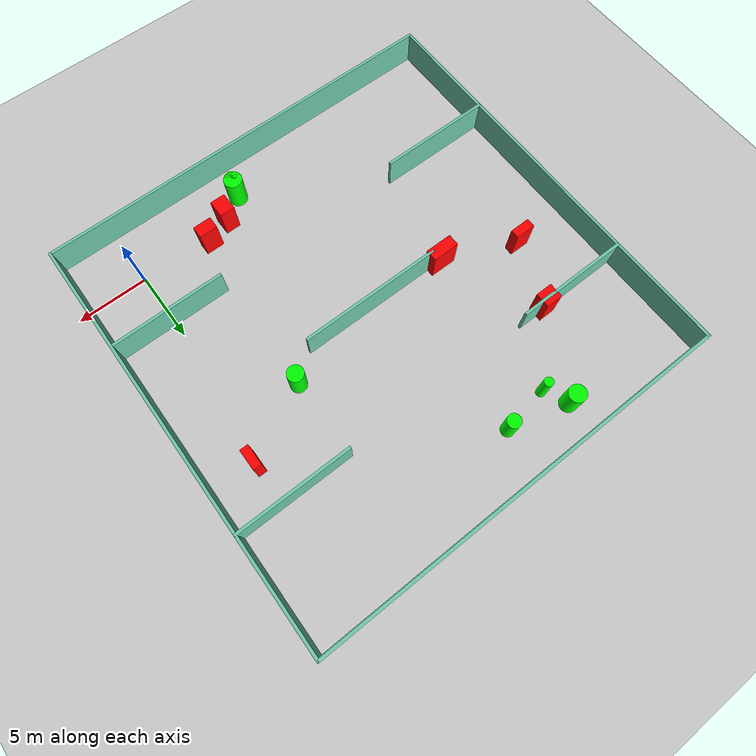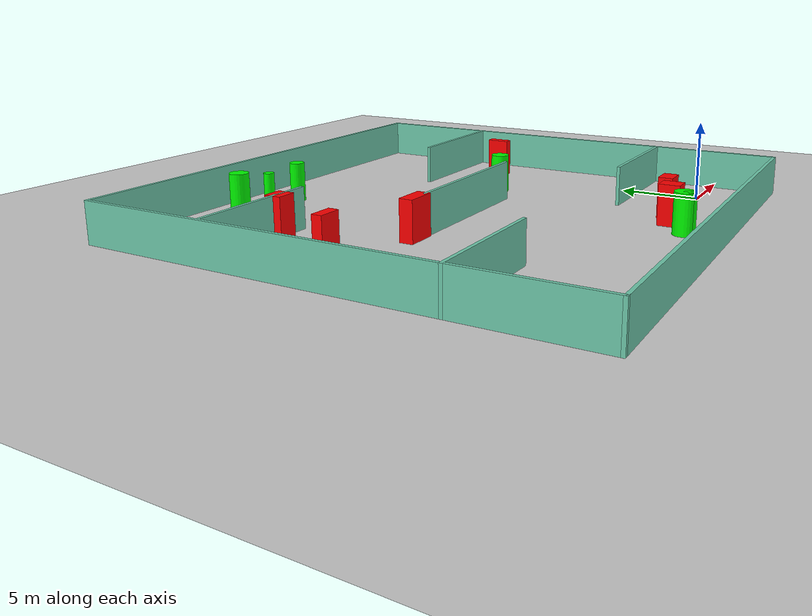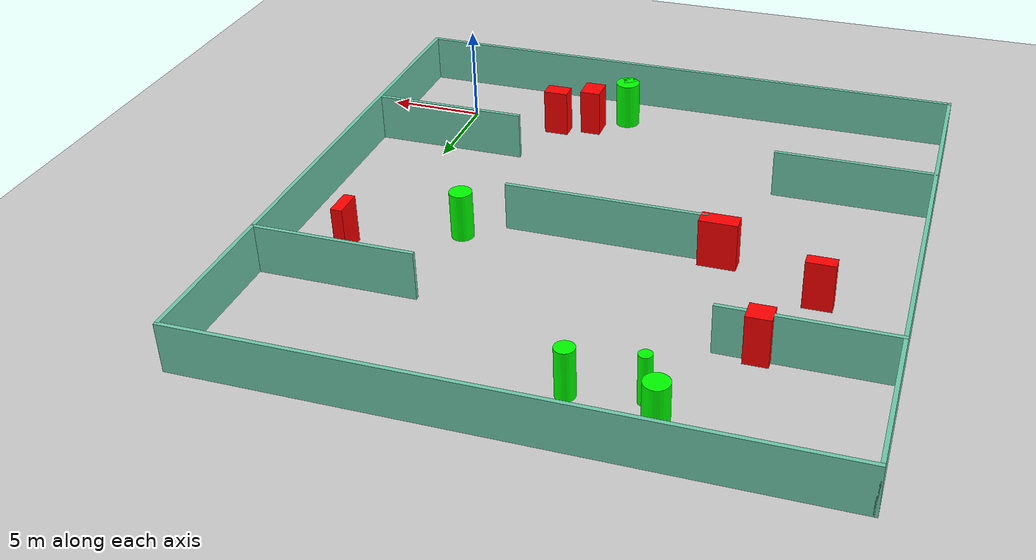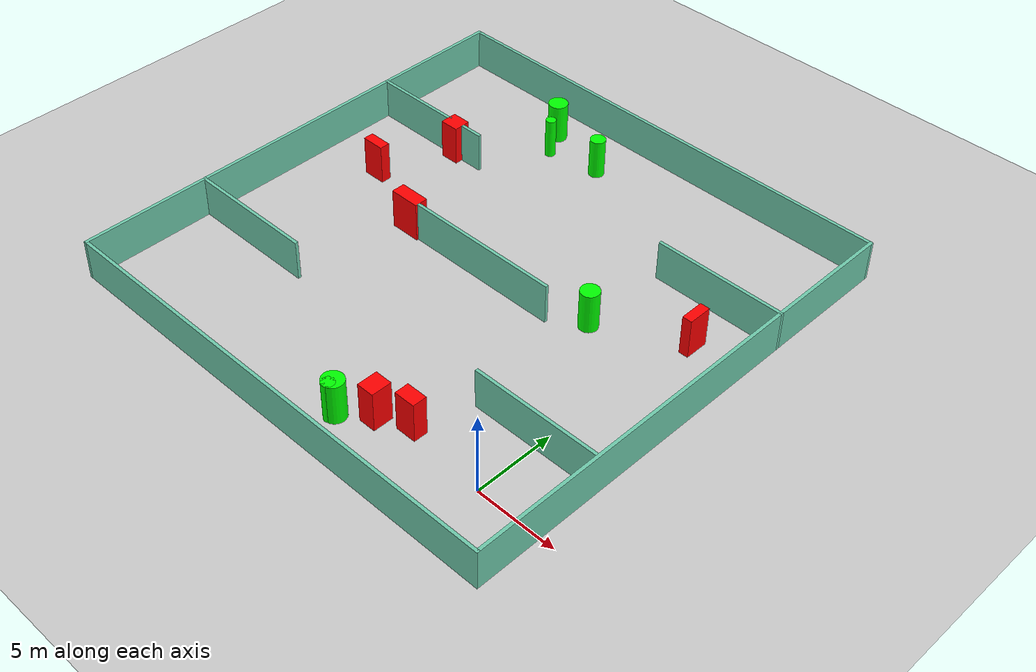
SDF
<sdf version="1.7">
 <world name="default">
  <light name="sun" type="directional">
   <pose>0 0 10 0 -0 0</pose>
   <diffuse>0.8 0.8 0.8 1</diffuse>
   <specular>0.2 0.2 0.2 1</specular>
   <attenuation>
    <range>1000</range>
    <constant>0.9</constant>
    <linear>0.01</linear>
    <quadratic>0.001</quadratic>
   </attenuation>
   <direction>-0.5 0.1 -0.9</direction>
   <spot><inner_angle>0</inner_angle><outer_angle>0</outer_angle><falloff>0</falloff></spot>
  </light>
  <model name="ground_plane">
   <static>1</static>
   <link name="link">
    <collision name="collision">
     <geometry><plane><normal>0 0 1</normal><size>100 100</size></plane></geometry>
     <surface>
      <contact><collide_bitmask>65535</collide_bitmask></contact>
      <friction><ode><mu>100</mu><mu2>50</mu2></ode></friction>
     </surface>
    </collision>
    <visual name="visual">
     <cast_shadows>0</cast_shadows>
     <geometry><plane><normal>0 0 1</normal><size>100 100</size></plane></geometry>
     <material>
      <script><uri>file://media/materials/scripts/gazebo.material</uri><name>Gazebo/Grey</name></script>
     </material>
    </visual>
   </link>
  </model>
  <gravity>0 0 -9.8</gravity>
  <magnetic_field>6e-06 2.3e-05 -4.2e-05</magnetic_field>
  <atmosphere type="adiabatic"/>
  <physics type="ode">
   <max_step_size>0.001</max_step_size>
   <real_time_factor>1</real_time_factor>
   <real_time_update_rate>1000</real_time_update_rate>
  </physics>
  <scene><ambient>0.4 0.4 0.4 1</ambient><background>0.7 0.7 0.7 1</background><shadows>1</shadows></scene>
  <spherical_coordinates>
   <surface_model>EARTH_WGS84</surface_model>
   <latitude_deg>0</latitude_deg>
   <longitude_deg>0</longitude_deg>
   <elevation>0</elevation>
   <heading_deg>0</heading_deg>
  </spherical_coordinates>
  <model name="my_base_walls">
   <link name="Wall_10">
    <collision name="Wall_10_Collision">
     <geometry><box><size>8.2 0.2 2.5</size></box></geometry>
     <pose>0 0 1.25 0 -0 0</pose>
    </collision>
    <visual name="Wall_10_Visual">
     <pose>0 0 1.25 0 -0 0</pose>
     <geometry><box><size>8.2 0.2 2.5</size></box></geometry>
     <material>
      <script><uri>file://media/materials/scripts/gazebo.material</uri><name>Gazebo/Grey</name></script>
      <ambient>0.435294 0.796078 0.67451 1</ambient>
     </material>
     <meta><layer>0</layer></meta>
    </visual>
    <pose>-11 -7 0 0 -0 0</pose>
   </link>
   <link name="Wall_12">
    <collision name="Wall_12_Collision">
     <geometry><box><size>8.2 0.2 2.5</size></box></geometry>
     <pose>0 0 1.25 0 -0 0</pose>
    </collision>
    <visual name="Wall_12_Visual">
     <pose>0 0 1.25 0 -0 0</pose>
     <geometry><box><size>8.2 0.2 2.5</size></box></geometry>
     <material>
      <script><uri>file://media/materials/scripts/gazebo.material</uri><name>Gazebo/Grey</name></script>
      <ambient>0.435294 0.796078 0.67451 1</ambient>
     </material>
     <meta><layer>0</layer></meta>
    </visual>
    <pose>-11 7 0 0 -0 0</pose>
   </link>
   <link name="Wall_14">
    <collision name="Wall_14_Collision">
     <geometry><box><size>8.2 0.2 2.5</size></box></geometry>
     <pose>0 0 1.25 0 -0 0</pose>
    </collision>
    <visual name="Wall_14_Visual">
     <pose>0 0 1.25 0 -0 0</pose>
     <geometry><box><size>8.2 0.2 2.5</size></box></geometry>
     <material>
      <script><uri>file://media/materials/scripts/gazebo.material</uri><name>Gazebo/Grey</name></script>
      <ambient>0.435294 0.796078 0.67451 1</ambient>
     </material>
     <meta><layer>0</layer></meta>
    </visual>
    <pose>11 7 0 0 -0 3.14159</pose>
   </link>
   <link name="Wall_16">
    <collision name="Wall_16_Collision">
     <geometry><box><size>10.2 0.2 2.5</size></box></geometry>
     <pose>0 0 1.25 0 -0 0</pose>
    </collision>
    <visual name="Wall_16_Visual">
     <pose>0 0 1.25 0 -0 0</pose>
     <geometry><box><size>10.2 0.2 2.5</size></box></geometry>
     <material>
      <script><uri>file://media/materials/scripts/gazebo.material</uri><name>Gazebo/Grey</name></script>
      <ambient>0.435294 0.796078 0.67451 1</ambient>
     </material>
     <meta><layer>0</layer></meta>
    </visual>
    <pose>0 0 0 0 -0 3.14159</pose>
   </link>
   <link name="Wall_2">
    <collision name="Wall_2_Collision">
     <geometry><box><size>30.2 0.2 2.5</size></box></geometry>
     <pose>0 0 1.25 0 -0 0</pose>
    </collision>
    <visual name="Wall_2_Visual">
     <pose>0 0 1.25 0 -0 0</pose>
     <geometry><box><size>30.2 0.2 2.5</size></box></geometry>
     <material>
      <script><uri>file://media/materials/scripts/gazebo.material</uri><name>Gazebo/Grey</name></script>
      <ambient>0.435294 0.796078 0.67451 1</ambient>
     </material>
     <meta><layer>0</layer></meta>
    </visual>
    <pose>0 -15 0 0 -0 3.14159</pose>
   </link>
   <link name="Wall_3">
    <collision name="Wall_3_Collision">
     <geometry><box><size>30.2 0.2 2.5</size></box></geometry>
     <pose>0 0 1.25 0 -0 0</pose>
    </collision>
    <visual name="Wall_3_Visual">
     <pose>0 0 1.25 0 -0 0</pose>
     <geometry><box><size>30.2 0.2 2.5</size></box></geometry>
     <material>
      <script><uri>file://media/materials/scripts/gazebo.material</uri><name>Gazebo/Grey</name></script>
      <ambient>0.435294 0.796078 0.67451 1</ambient>
     </material>
     <meta><layer>0</layer></meta>
    </visual>
    <pose>-15 0 0 0 -0 1.5708</pose>
   </link>
   <link name="Wall_4">
    <collision name="Wall_4_Collision">
     <geometry><box><size>30.2 0.2 2.5</size></box></geometry>
     <pose>0 0 1.25 0 -0 0</pose>
    </collision>
    <visual name="Wall_4_Visual">
     <pose>0 0 1.25 0 -0 0</pose>
     <geometry><box><size>30.2 0.2 2.5</size></box></geometry>
     <material>
      <script><uri>file://media/materials/scripts/gazebo.material</uri><name>Gazebo/Grey</name></script>
      <ambient>0.435294 0.796078 0.67451 1</ambient>
     </material>
     <meta><layer>0</layer></meta>
    </visual>
    <pose>0 15 0 0 -0 0</pose>
   </link>
   <link name="Wall_6">
    <collision name="Wall_6_Collision">
     <geometry><box><size>30.2 0.2 2.5</size></box></geometry>
     <pose>0 0 1.25 0 -0 0</pose>
    </collision>
    <visual name="Wall_6_Visual">
     <pose>0 0 1.25 0 -0 0</pose>
     <geometry><box><size>30.2 0.2 2.5</size></box></geometry>
     <material>
      <script><uri>file://media/materials/scripts/gazebo.material</uri><name>Gazebo/Grey</name></script>
      <ambient>0.435294 0.796078 0.67451 1</ambient>
     </material>
     <meta><layer>0</layer></meta>
    </visual>
    <pose>15 0 0 0 -0 1.5708</pose>
   </link>
   <link name="Wall_8">
    <collision name="Wall_8_Collision">
     <geometry><box><size>8.2 0.2 2.5</size></box></geometry>
     <pose>0 0 1.25 0 -0 0</pose>
    </collision>
    <visual name="Wall_8_Visual">
     <pose>0 0 1.25 0 -0 0</pose>
     <geometry><box><size>8.2 0.2 2.5</size></box></geometry>
     <material>
      <script><uri>file://media/materials/scripts/gazebo.material</uri><name>Gazebo/Grey</name></script>
      <ambient>0.435294 0.796078 0.67451 1</ambient>
     </material>
     <meta><layer>0</layer></meta>
    </visual>
    <pose>11 -7 0 0 -0 3.14159</pose>
   </link>
   <static>1</static>
   <pose>-11 11 0 0 -0 0</pose>
  </model>
  <model name="cylinder1">
   <static>1</static>
   <link name="link">
    <inertial>
     <mass>1</mass>
     <inertia><ixx>0.5</ixx><ixy>0</ixy><ixz>0</ixz><iyy>0.5</iyy><iyz>0</iyz><izz>1</izz></inertia>
    </inertial>
    <collision name="collision">
     <geometry><cylinder><radius>0.47242718628975805</radius><length>2.5</length></cylinder></geometry>
    </collision>
    <visual name="visual">
     <geometry><cylinder><radius>0.47242718628975805</radius><length>2.5</length></cylinder></geometry>
     <material>
      <ambient>0 1 0 1</ambient>
      <diffuse>0 1 0 1</diffuse>
      <specular>0.1 0.1 0.1 1</specular>
      <emissive>0 0 0 0</emissive>
     </material>
    </visual>
   </link>
   <pose>-12.779322309534713 22.668902827837236 1.25 0 0 0</pose>
  </model>
  <model name="cylinder2">
   <static>1</static>
   <link name="link">
    <inertial>
     <mass>1</mass>
     <inertia><ixx>0.5</ixx><ixy>0</ixy><ixz>0</ixz><iyy>0.5</iyy><iyz>0</iyz><izz>1</izz></inertia>
    </inertial>
    <collision name="collision">
     <geometry><cylinder><radius>0.5730181005393973</radius><length>2.5</length></cylinder></geometry>
    </collision>
    <visual name="visual">
     <geometry><cylinder><radius>0.5730181005393973</radius><length>2.5</length></cylinder></geometry>
     <material>
      <ambient>0 1 0 1</ambient>
      <diffuse>0 1 0 1</diffuse>
      <specular>0.1 0.1 0.1 1</specular>
      <emissive>0 0 0 0</emissive>
     </material>
    </visual>
   </link>
   <pose>-4.085203790462739 12.35555213935908 1.25 0 0 0</pose>
  </model>
  <model name="cylinder3">
   <static>1</static>
   <link name="link">
    <inertial>
     <mass>1</mass>
     <inertia><ixx>0.5</ixx><ixy>0</ixy><ixz>0</ixz><iyy>0.5</iyy><iyz>0</iyz><izz>1</izz></inertia>
    </inertial>
    <collision name="collision">
     <geometry><cylinder><radius>0.6460317376051646</radius><length>2.5</length></cylinder></geometry>
    </collision>
    <visual name="visual">
     <geometry><cylinder><radius>0.6460317376051646</radius><length>2.5</length></cylinder></geometry>
     <material>
      <ambient>0 1 0 1</ambient>
      <diffuse>0 1 0 1</diffuse>
      <specular>0.1 0.1 0.1 1</specular>
      <emissive>0 0 0 0</emissive>
     </material>
    </visual>
   </link>
   <pose>-8.57639139763531 -1.4898799793786854 1.25 0 0 0</pose>
  </model>
  <model name="cylinder4">
   <static>1</static>
   <link name="link">
    <inertial>
     <mass>1</mass>
     <inertia><ixx>0.5</ixx><ixy>0</ixy><ixz>0</ixz><iyy>0.5</iyy><iyz>0</iyz><izz>1</izz></inertia>
    </inertial>
    <collision name="collision">
     <geometry><cylinder><radius>0.3197444461978799</radius><length>2.5</length></cylinder></geometry>
    </collision>
    <visual name="visual">
     <geometry><cylinder><radius>0.3197444461978799</radius><length>2.5</length></cylinder></geometry>
     <material>
      <ambient>0 1 0 1</ambient>
      <diffuse>0 1 0 1</diffuse>
      <specular>0.1 0.1 0.1 1</specular>
      <emissive>0 0 0 0</emissive>
     </material>
    </visual>
   </link>
   <pose>-16.052050723777676 22.140616611001324 1.25 0 0 0</pose>
  </model>
  <model name="cylinder5">
   <static>1</static>
   <link name="link">
    <inertial>
     <mass>1</mass>
     <inertia><ixx>0.5</ixx><ixy>0</ixy><ixz>0</ixz><iyy>0.5</iyy><iyz>0</iyz><izz>1</izz></inertia>
    </inertial>
    <collision name="collision">
     <geometry><cylinder><radius>0.39453357759725627</radius><length>2.5</length></cylinder></geometry>
    </collision>
    <visual name="visual">
     <geometry><cylinder><radius>0.39453357759725627</radius><length>2.5</length></cylinder></geometry>
     <material>
      <ambient>0 1 0 1</ambient>
      <diffuse>0 1 0 1</diffuse>
      <specular>0.1 0.1 0.1 1</specular>
      <emissive>0 0 0 0</emissive>
     </material>
    </visual>
   </link>
   <pose>-8.61120601372171 -1.770365788412001 1.25 0 0 0</pose>
  </model>
  <model name="cylinder6">
   <static>1</static>
   <link name="link">
    <inertial>
     <mass>1</mass>
     <inertia><ixx>0.5</ixx><ixy>0</ixy><ixz>0</ixz><iyy>0.5</iyy><iyz>0</iyz><izz>1</izz></inertia>
    </inertial>
    <collision name="collision">
     <geometry><cylinder><radius>0.5994666393791315</radius><length>2.5</length></cylinder></geometry>
    </collision>
    <visual name="visual">
     <geometry><cylinder><radius>0.5994666393791315</radius><length>2.5</length></cylinder></geometry>
     <material>
      <ambient>0 1 0 1</ambient>
      <diffuse>0 1 0 1</diffuse>
      <specular>0.1 0.1 0.1 1</specular>
      <emissive>0 0 0 0</emissive>
     </material>
    </visual>
   </link>
   <pose>-16.94002929778186 23.736294661604852 1.25 0 0 0</pose>
  </model>
  <model name="box1">
   <static>1</static>
   <link name="link">
    <inertial>
     <mass>1</mass>
     <inertia><ixx>0.083</ixx><ixy>0</ixy><ixz>0</ixz><iyy>0.083</iyy><iyz>0</iyz><izz>0.083</izz></inertia>
    </inertial>
    <collision name="collision">
     <geometry><box><size>1.4289545914076776 0.637592332620613 2.5</size></box></geometry>
    </collision>
    <visual name="visual">
     <geometry><box><size>1.4289545914076776 0.637592332620613 2.5</size></box></geometry>
     <material>
      <ambient>1 0 0 1</ambient>
      <diffuse>1 0 0 1</diffuse>
      <specular>0.1 0.1 0.1 1</specular>
      <emissive>0 0 0 0</emissive>
     </material>
    </visual>
    <sensor name="my_contact" type="contact">
     <contact><collision>box_collision</collision><topic>__default_topic__</topic></contact>
    </sensor>
   </link>
   <pose>-21.802691471747316 13.337869494438237 1.25 0 0 0</pose>
  </model>
  <model name="box2">
   <static>1</static>
   <link name="link">
    <inertial>
     <mass>1</mass>
     <inertia><ixx>0.083</ixx><ixy>0</ixy><ixz>0</ixz><iyy>0.083</iyy><iyz>0</iyz><izz>0.083</izz></inertia>
    </inertial>
    <collision name="collision">
     <geometry><box><size>1.1868205729885126 1.0588003466060862 2.5</size></box></geometry>
    </collision>
    <visual name="visual">
     <geometry><box><size>1.1868205729885126 1.0588003466060862 2.5</size></box></geometry>
     <material>
      <ambient>1 0 0 1</ambient>
      <diffuse>1 0 0 1</diffuse>
      <specular>0.1 0.1 0.1 1</specular>
      <emissive>0 0 0 0</emissive>
     </material>
    </visual>
    <sensor name="my_contact" type="contact">
     <contact><collision>box_collision</collision><topic>__default_topic__</topic></contact>
    </sensor>
   </link>
   <pose>-19.940387762830092 17.952948571140784 1.25 0 0 0</pose>
  </model>
  <model name="box3">
   <static>1</static>
   <link name="link">
    <inertial>
     <mass>1</mass>
     <inertia><ixx>0.083</ixx><ixy>0</ixy><ixz>0</ixz><iyy>0.083</iyy><iyz>0</iyz><izz>0.083</izz></inertia>
    </inertial>
    <collision name="collision">
     <geometry><box><size>1.903468587912196 0.8446681479690958 2.5</size></box></geometry>
    </collision>
    <visual name="visual">
     <geometry><box><size>1.903468587912196 0.8446681479690958 2.5</size></box></geometry>
     <material>
      <ambient>1 0 0 1</ambient>
      <diffuse>1 0 0 1</diffuse>
      <specular>0.1 0.1 0.1 1</specular>
      <emissive>0 0 0 0</emissive>
     </material>
    </visual>
    <sensor name="my_contact" type="contact">
     <contact><collision>box_collision</collision><topic>__default_topic__</topic></contact>
    </sensor>
   </link>
   <pose>-16.672769166814987 11.199006285035615 1.25 0 0 0</pose>
  </model>
  <model name="box4">
   <static>1</static>
   <link name="link">
    <inertial>
     <mass>1</mass>
     <inertia><ixx>0.083</ixx><ixy>0</ixy><ixz>0</ixz><iyy>0.083</iyy><iyz>0</iyz><izz>0.083</izz></inertia>
    </inertial>
    <collision name="collision">
     <geometry><box><size>1.302320341603374 0.875484787013622 2.5</size></box></geometry>
    </collision>
    <visual name="visual">
     <geometry><box><size>1.302320341603374 0.875484787013622 2.5</size></box></geometry>
     <material>
      <ambient>1 0 0 1</ambient>
      <diffuse>1 0 0 1</diffuse>
      <specular>0.1 0.1 0.1 1</specular>
      <emissive>0 0 0 0</emissive>
     </material>
    </visual>
    <sensor name="my_contact" type="contact">
     <contact><collision>box_collision</collision><topic>__default_topic__</topic></contact>
    </sensor>
   </link>
   <pose>-5.104002812066048 0.4956396620861545 1.25 0 0 0</pose>
  </model>
  <model name="box5">
   <static>1</static>
   <link name="link">
    <inertial>
     <mass>1</mass>
     <inertia><ixx>0.083</ixx><ixy>0</ixy><ixz>0</ixz><iyy>0.083</iyy><iyz>0</iyz><izz>0.083</izz></inertia>
    </inertial>
    <collision name="collision">
     <geometry><box><size>1.0807335432232335 1.2581147117077192 2.5</size></box></geometry>
    </collision>
    <visual name="visual">
     <geometry><box><size>1.0807335432232335 1.2581147117077192 2.5</size></box></geometry>
     <material>
      <ambient>1 0 0 1</ambient>
      <diffuse>1 0 0 1</diffuse>
      <specular>0.1 0.1 0.1 1</specular>
      <emissive>0 0 0 0</emissive>
     </material>
    </visual>
    <sensor name="my_contact" type="contact">
     <contact><collision>box_collision</collision><topic>__default_topic__</topic></contact>
    </sensor>
   </link>
   <pose>-6.924858447938696 -0.23326791944622727 1.25 0 0 0</pose>
  </model>
  <model name="box6">
   <static>1</static>
   <link name="link">
    <inertial>
     <mass>1</mass>
     <inertia><ixx>0.083</ixx><ixy>0</ixy><ixz>0</ixz><iyy>0.083</iyy><iyz>0</iyz><izz>0.083</izz></inertia>
    </inertial>
    <collision name="collision">
     <geometry><box><size>0.5861494711193649 1.464682711849235 2.5</size></box></geometry>
    </collision>
    <visual name="visual">
     <geometry><box><size>0.5861494711193649 1.464682711849235 2.5</size></box></geometry>
     <material>
      <ambient>1 0 0 1</ambient>
      <diffuse>1 0 0 1</diffuse>
      <specular>0.1 0.1 0.1 1</specular>
      <emissive>0 0 0 0</emissive>
     </material>
    </visual>
    <sensor name="my_contact" type="contact">
     <contact><collision>box_collision</collision><topic>__default_topic__</topic></contact>
    </sensor>
   </link>
   <pose>0.9052683045442826 14.930078354369929 1.25 0 0 0</pose>
  </model>
 </world>
</sdf>
